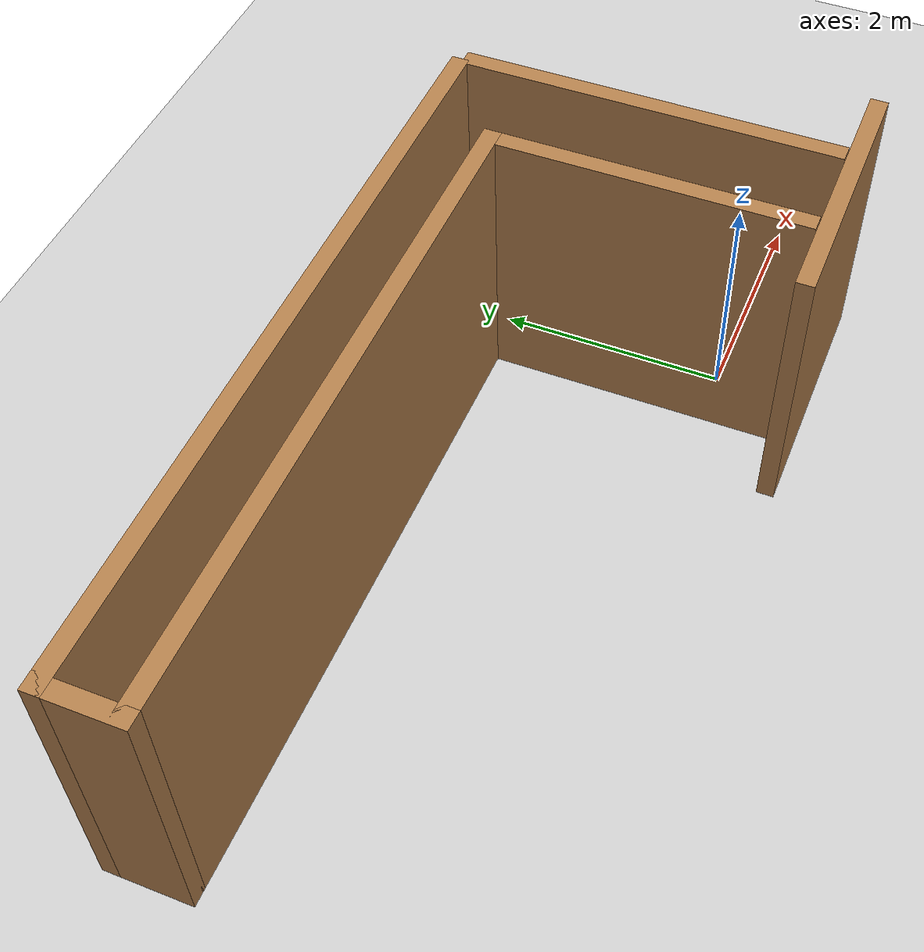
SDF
<sdf version="1.7">
 <world name="default">
  <light name="sun" type="directional">
   <pose>0 0 10 0 -0 0</pose>
   <diffuse>0.8 0.8 0.8 1</diffuse>
   <specular>0.2 0.2 0.2 1</specular>
   <attenuation>
    <range>1000</range>
    <constant>0.9</constant>
    <linear>0.01</linear>
    <quadratic>0.001</quadratic>
   </attenuation>
   <direction>-0.5 0.1 -0.9</direction>
   <spot><inner_angle>0</inner_angle><outer_angle>0</outer_angle><falloff>0</falloff></spot>
  </light>
  <model name="ground_plane">
   <static>1</static>
   <link name="link">
    <collision name="collision">
     <geometry><plane><normal>0 0 1</normal><size>100 100</size></plane></geometry>
     <surface>
      <contact><collide_bitmask>65535</collide_bitmask></contact>
      <friction><ode><mu>100</mu><mu2>50</mu2></ode></friction>
     </surface>
    </collision>
    <visual name="visual">
     <cast_shadows>0</cast_shadows>
     <geometry><plane><normal>0 0 1</normal><size>100 100</size></plane></geometry>
     <material>
      <script><uri>file://media/materials/scripts/gazebo.material</uri><name>Gazebo/Grey</name></script>
     </material>
    </visual>
   </link>
  </model>
  <gravity>0 0 -9.8</gravity>
  <magnetic_field>6e-06 2.3e-05 -4.2e-05</magnetic_field>
  <atmosphere type="adiabatic"/>
  <physics type="ode">
   <max_step_size>0.001</max_step_size>
   <real_time_factor>1</real_time_factor>
   <real_time_update_rate>1000</real_time_update_rate>
  </physics>
  <scene><ambient>0.4 0.4 0.4 1</ambient><background>0.7 0.7 0.7 1</background><shadows>1</shadows></scene>
  <spherical_coordinates>
   <surface_model>EARTH_WGS84</surface_model>
   <latitude_deg>0</latitude_deg>
   <longitude_deg>0</longitude_deg>
   <elevation>0</elevation>
   <heading_deg>0</heading_deg>
  </spherical_coordinates>
  <model name="walls">
   <pose>-2.79011 2.32568 0 0 -0 0</pose>
   <link name="Wall_0">
    <collision name="Wall_0_Collision">
     <geometry><box><size>6.5 0.15 2.5</size></box></geometry>
     <pose>0 0 1.25 0 -0 0</pose>
    </collision>
    <visual name="Wall_0_Visual">
     <pose>0 0 1.25 0 -0 0</pose>
     <geometry><box><size>6.5 0.15 2.5</size></box></geometry>
     <material>
      <script><uri>file://media/materials/scripts/gazebo.material</uri><name>Gazebo/Wood</name></script>
      <ambient>1 1 1 1</ambient>
     </material>
     <meta><layer>0</layer></meta>
    </visual>
    <pose>-0.05 0.2675 0 0 -0 3.14159</pose>
    <sensor name="my_contact0" type="contact"><contact><collision>box_collision</collision></contact></sensor>
   </link>
   <link name="Wall_1">
    <collision name="Wall_1_Collision">
     <geometry><box><size>0.75 0.15 2.5</size></box></geometry>
     <pose>0 0 1.25 0 -0 0</pose>
    </collision>
    <visual name="Wall_1_Visual">
     <pose>0 0 1.25 0 -0 0</pose>
     <geometry><box><size>0.75 0.15 2.5</size></box></geometry>
     <material>
      <script><uri>file://media/materials/scripts/gazebo.material</uri><name>Gazebo/Wood</name></script>
      <ambient>1 1 1 1</ambient>
     </material>
     <meta><layer>0</layer></meta>
    </visual>
    <pose>-3.225 -0.0325 0 0 -0 -1.5708</pose>
    <sensor name="my_contact1" type="contact"><contact><collision>box_collision</collision></contact></sensor>
   </link>
   <link name="Wall_2">
    <collision name="Wall_2_Collision">
     <geometry><box><size>5.75 0.15 2.5</size></box></geometry>
     <pose>0 0 1.25 0 -0 0</pose>
    </collision>
    <visual name="Wall_2_Visual">
     <pose>0 0 1.25 0 -0 0</pose>
     <geometry><box><size>5.75 0.15 2.5</size></box></geometry>
     <material>
      <script><uri>file://media/materials/scripts/gazebo.material</uri><name>Gazebo/Wood</name></script>
      <ambient>1 1 1 1</ambient>
     </material>
     <meta><layer>0</layer></meta>
    </visual>
    <pose>-0.425 -0.3325 0 0 -0 0</pose>
    <sensor name="my_contact2" type="contact"><contact><collision>box_collision</collision></contact></sensor>
   </link>
   <link name="Wall_3">
    <collision name="Wall_3_Collision">
     <geometry><box><size>2.75 0.15 2.5</size></box></geometry>
     <pose>0 0 1.25 0 -0 0</pose>
    </collision>
    <visual name="Wall_3_Visual">
     <pose>0 0 1.25 0 -0 0</pose>
     <geometry><box><size>2.75 0.15 2.5</size></box></geometry>
     <material>
      <script><uri>file://media/materials/scripts/gazebo.material</uri><name>Gazebo/Wood</name></script>
      <ambient>1 1 1 1</ambient>
     </material>
     <meta><layer>0</layer></meta>
    </visual>
    <pose>2.375 -1.6325 0 0 -0 -1.5708</pose>
    <sensor name="my_contact3" type="contact"><contact><collision>box_collision</collision></contact></sensor>
   </link>
   <link name="Wall_5">
    <collision name="Wall_5_Collision">
     <geometry><box><size>3.25 0.15 2.5</size></box></geometry>
     <pose>0 0 1.25 0 -0 0</pose>
    </collision>
    <visual name="Wall_5_Visual">
     <pose>0 0 1.25 0 -0 0</pose>
     <geometry><box><size>3.25 0.15 2.5</size></box></geometry>
     <material>
      <script><uri>file://media/materials/scripts/gazebo.material</uri><name>Gazebo/Wood</name></script>
      <ambient>1 1 1 1</ambient>
     </material>
     <meta><layer>0</layer></meta>
    </visual>
    <pose>3.225 -1.3825 0 0 -0 1.5708</pose>
    <sensor name="my_contact5" type="contact"><contact><collision>box_collision</collision></contact></sensor>
   </link>
   <static>1</static>
  </model>
  <model name="Untitled">
   <pose>0.03886 -0.34617 0 0 -0 0</pose>
   <link name="Wall_2">
    <collision name="Wall_2_Collision">
     <geometry><box><size>2.25 0.15 2.5</size></box></geometry>
     <pose>0 0 1.25 0 -0 0</pose>
    </collision>
    <visual name="Wall_2_Visual">
     <pose>0 0 1.25 0 -0 0</pose>
     <geometry><box><size>2.25 0.15 2.5</size></box></geometry>
     <material>
      <script><uri>file://media/materials/scripts/gazebo.material</uri><name>Gazebo/Wood</name></script>
      <ambient>1 1 1 1</ambient>
     </material>
     <meta><layer>0</layer></meta>
    </visual>
    <pose>-0 -0.4175 0 0 -0 0</pose>
    <sensor name="my_contact6" type="contact"><contact><collision>box_collision</collision></contact></sensor>
   </link>
   <static>1</static>
  </model>
 </world>
</sdf>
